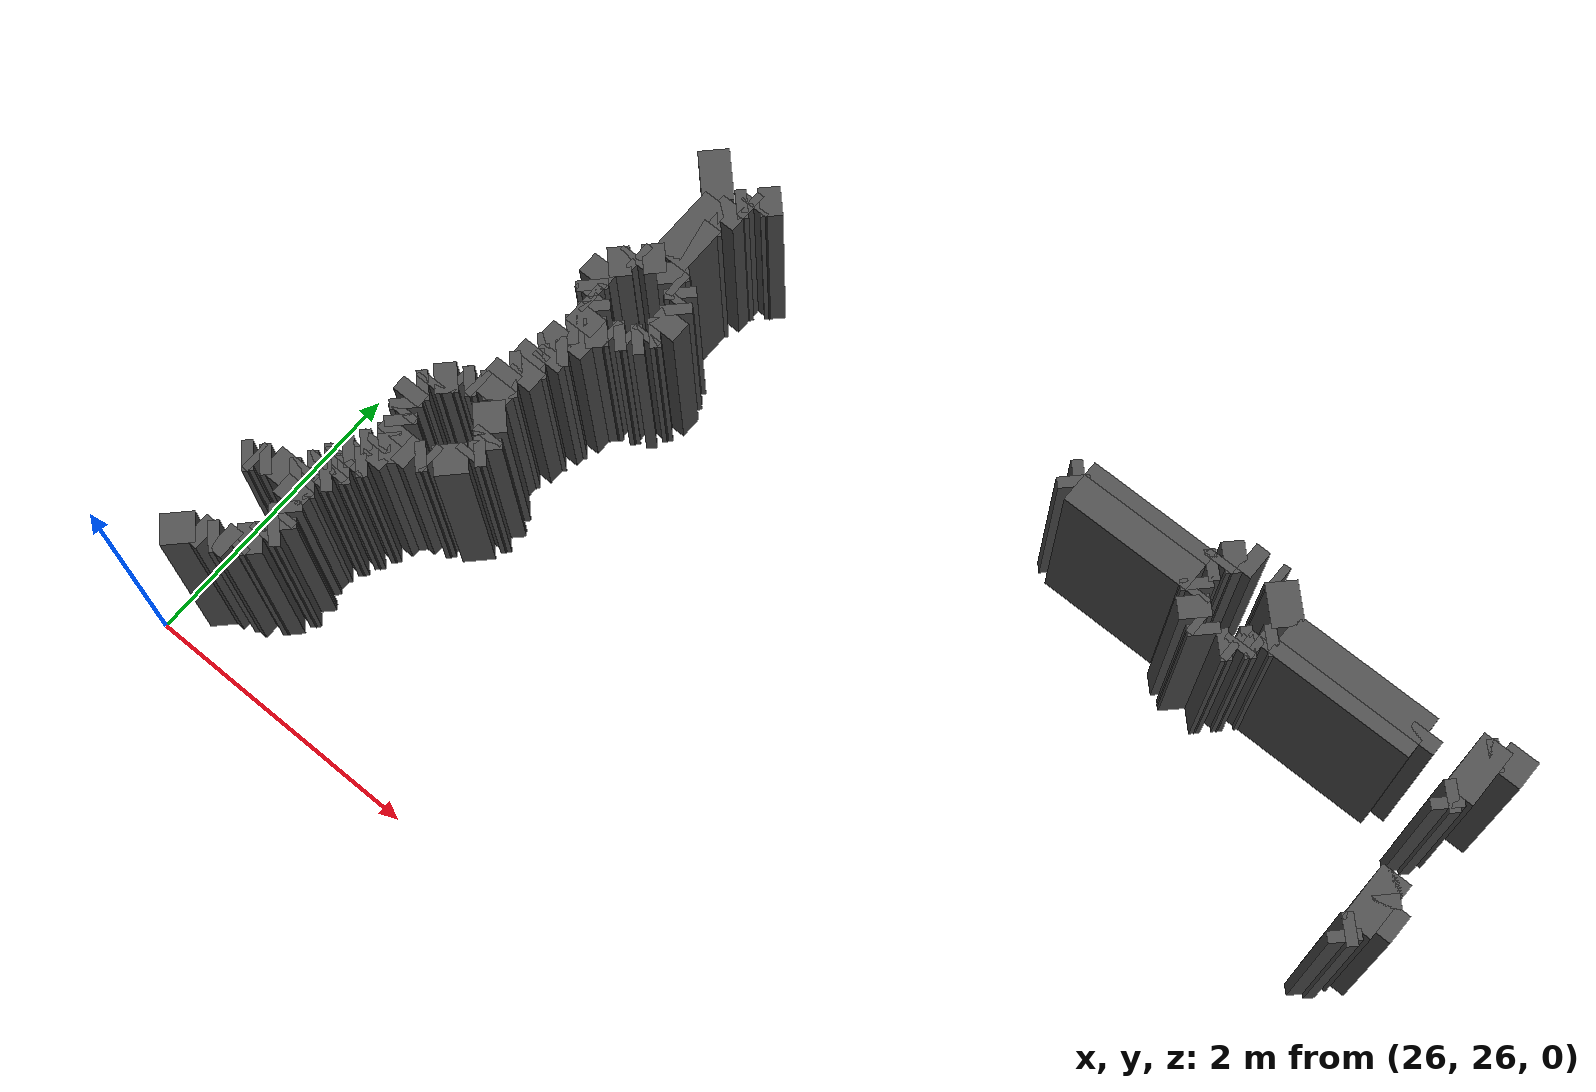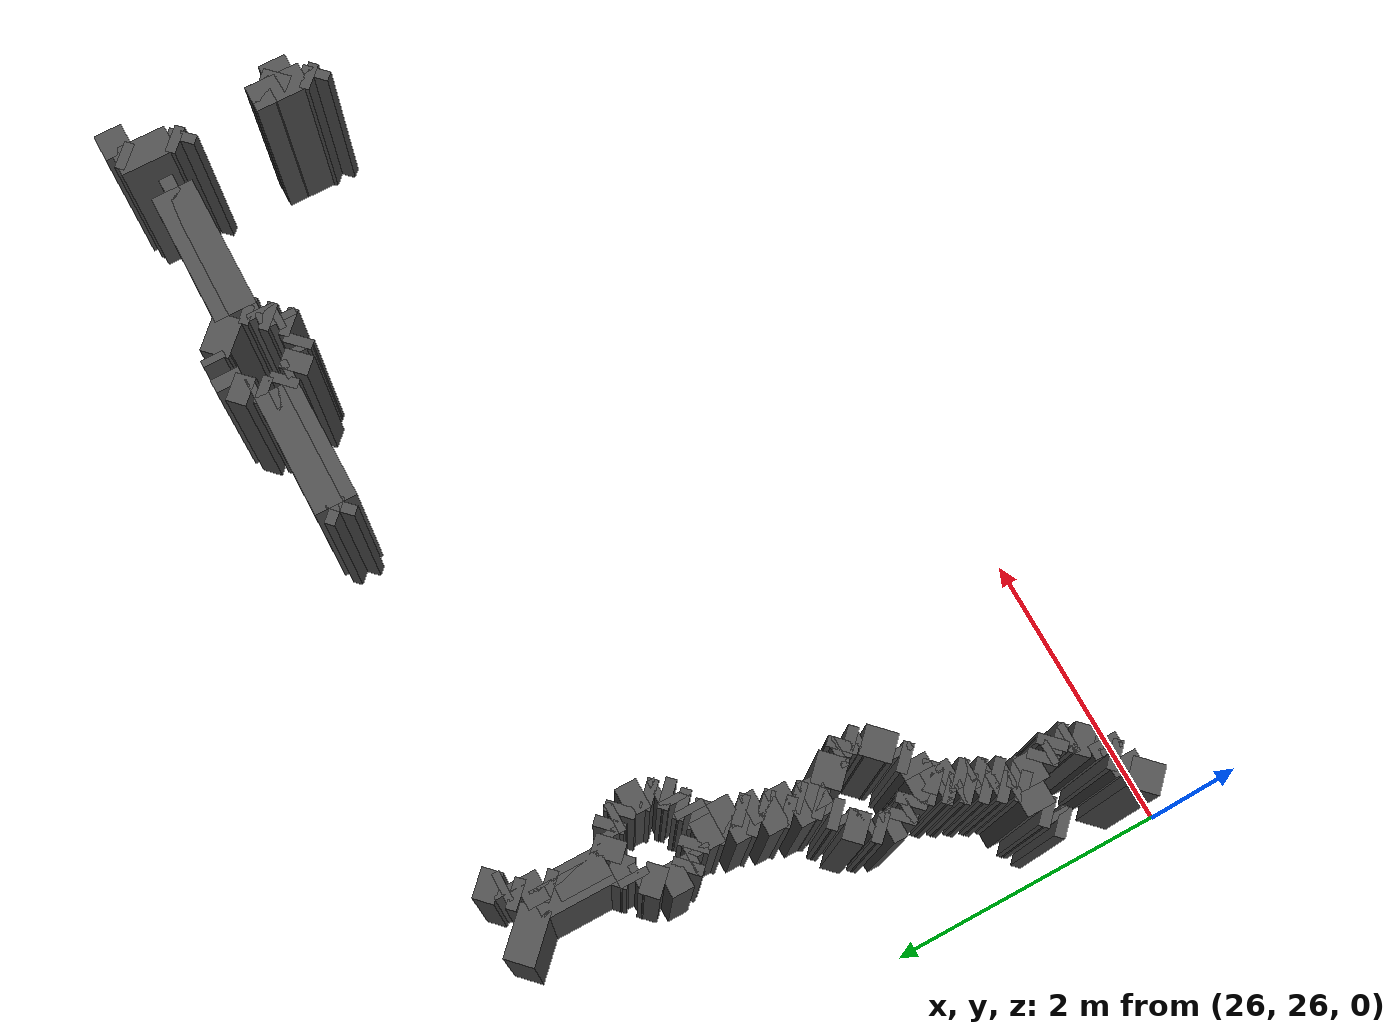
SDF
<sdf version="1.9">
 <model name="generated_walls">
  <static>true</static>
  <link name="wall_55_0">
   <pose>32.975 29.725 0.75 0 0 2.356</pose>
   <collision name="collision"><geometry><box><size>0.071 0.2 1.5</size></box></geometry></collision>
   <visual name="visual">
    <geometry><box><size>0.071 0.2 1.5</size></box></geometry>
    <material><ambient>0.3 0.3 0.3 1</ambient></material>
   </visual>
  </link>
  <link name="wall_55_1">
   <pose>32.975 29.775 0.75 0 0 0.785</pose>
   <collision name="collision"><geometry><box><size>0.071 0.2 1.5</size></box></geometry></collision>
   <visual name="visual">
    <geometry><box><size>0.071 0.2 1.5</size></box></geometry>
    <material><ambient>0.3 0.3 0.3 1</ambient></material>
   </visual>
  </link>
  <link name="wall_55_2">
   <pose>33.000 30.000 0.75 0 0 1.571</pose>
   <collision name="collision"><geometry><box><size>0.400 0.2 1.5</size></box></geometry></collision>
   <visual name="visual">
    <geometry><box><size>0.400 0.2 1.5</size></box></geometry>
    <material><ambient>0.3 0.3 0.3 1</ambient></material>
   </visual>
  </link>
  <link name="wall_55_5">
   <pose>33.150 30.150 0.75 0 0 3.142</pose>
   <collision name="collision"><geometry><box><size>0.200 0.2 1.5</size></box></geometry></collision>
   <visual name="visual">
    <geometry><box><size>0.200 0.2 1.5</size></box></geometry>
    <material><ambient>0.3 0.3 0.3 1</ambient></material>
   </visual>
  </link>
  <link name="wall_55_6">
   <pose>33.025 30.125 0.75 0 0 -2.356</pose>
   <collision name="collision"><geometry><box><size>0.071 0.2 1.5</size></box></geometry></collision>
   <visual name="visual">
    <geometry><box><size>0.071 0.2 1.5</size></box></geometry>
    <material><ambient>0.3 0.3 0.3 1</ambient></material>
   </visual>
  </link>
  <link name="wall_56_0">
   <pose>31.275 29.675 0.75 0 0 2.356</pose>
   <collision name="collision"><geometry><box><size>0.071 0.2 1.5</size></box></geometry></collision>
   <visual name="visual">
    <geometry><box><size>0.071 0.2 1.5</size></box></geometry>
    <material><ambient>0.3 0.3 0.3 1</ambient></material>
   </visual>
  </link>
  <link name="wall_56_1">
   <pose>31.225 29.700 0.75 0 0 3.142</pose>
   <collision name="collision"><geometry><box><size>0.050 0.2 1.5</size></box></geometry></collision>
   <visual name="visual">
    <geometry><box><size>0.050 0.2 1.5</size></box></geometry>
    <material><ambient>0.3 0.3 0.3 1</ambient></material>
   </visual>
  </link>
  <link name="wall_56_2">
   <pose>31.150 29.750 0.75 0 0 2.356</pose>
   <collision name="collision"><geometry><box><size>0.141 0.2 1.5</size></box></geometry></collision>
   <visual name="visual">
    <geometry><box><size>0.141 0.2 1.5</size></box></geometry>
    <material><ambient>0.3 0.3 0.3 1</ambient></material>
   </visual>
  </link>
  <link name="wall_56_3">
   <pose>31.100 29.825 0.75 0 0 1.571</pose>
   <collision name="collision"><geometry><box><size>0.050 0.2 1.5</size></box></geometry></collision>
   <visual name="visual">
    <geometry><box><size>0.050 0.2 1.5</size></box></geometry>
    <material><ambient>0.3 0.3 0.3 1</ambient></material>
   </visual>
  </link>
  <link name="wall_56_4">
   <pose>31.075 29.875 0.75 0 0 2.356</pose>
   <collision name="collision"><geometry><box><size>0.071 0.2 1.5</size></box></geometry></collision>
   <visual name="visual">
    <geometry><box><size>0.071 0.2 1.5</size></box></geometry>
    <material><ambient>0.3 0.3 0.3 1</ambient></material>
   </visual>
  </link>
  <link name="wall_56_5">
   <pose>30.600 29.900 0.75 0 0 3.142</pose>
   <collision name="collision"><geometry><box><size>0.900 0.2 1.5</size></box></geometry></collision>
   <visual name="visual">
    <geometry><box><size>0.900 0.2 1.5</size></box></geometry>
    <material><ambient>0.3 0.3 0.3 1</ambient></material>
   </visual>
  </link>
  <link name="wall_56_6">
   <pose>30.125 29.925 0.75 0 0 2.356</pose>
   <collision name="collision"><geometry><box><size>0.071 0.2 1.5</size></box></geometry></collision>
   <visual name="visual">
    <geometry><box><size>0.071 0.2 1.5</size></box></geometry>
    <material><ambient>0.3 0.3 0.3 1</ambient></material>
   </visual>
  </link>
  <link name="wall_56_7">
   <pose>30.125 29.975 0.75 0 0 0.785</pose>
   <collision name="collision"><geometry><box><size>0.071 0.2 1.5</size></box></geometry></collision>
   <visual name="visual">
    <geometry><box><size>0.071 0.2 1.5</size></box></geometry>
    <material><ambient>0.3 0.3 0.3 1</ambient></material>
   </visual>
  </link>
  <link name="wall_56_8">
   <pose>30.600 30.000 0.75 0 0 0.000</pose>
   <collision name="collision"><geometry><box><size>0.900 0.2 1.5</size></box></geometry></collision>
   <visual name="visual">
    <geometry><box><size>0.900 0.2 1.5</size></box></geometry>
    <material><ambient>0.3 0.3 0.3 1</ambient></material>
   </visual>
  </link>
  <link name="wall_56_9">
   <pose>31.075 30.025 0.75 0 0 0.785</pose>
   <collision name="collision"><geometry><box><size>0.071 0.2 1.5</size></box></geometry></collision>
   <visual name="visual">
    <geometry><box><size>0.071 0.2 1.5</size></box></geometry>
    <material><ambient>0.3 0.3 0.3 1</ambient></material>
   </visual>
  </link>
  <link name="wall_56_10">
   <pose>31.100 30.075 0.75 0 0 1.571</pose>
   <collision name="collision"><geometry><box><size>0.050 0.2 1.5</size></box></geometry></collision>
   <visual name="visual">
    <geometry><box><size>0.050 0.2 1.5</size></box></geometry>
    <material><ambient>0.3 0.3 0.3 1</ambient></material>
   </visual>
  </link>
  <link name="wall_56_11">
   <pose>31.150 30.150 0.75 0 0 0.785</pose>
   <collision name="collision"><geometry><box><size>0.141 0.2 1.5</size></box></geometry></collision>
   <visual name="visual">
    <geometry><box><size>0.141 0.2 1.5</size></box></geometry>
    <material><ambient>0.3 0.3 0.3 1</ambient></material>
   </visual>
  </link>
  <link name="wall_56_12">
   <pose>31.250 30.200 0.75 0 0 0.000</pose>
   <collision name="collision"><geometry><box><size>0.100 0.2 1.5</size></box></geometry></collision>
   <visual name="visual">
    <geometry><box><size>0.100 0.2 1.5</size></box></geometry>
    <material><ambient>0.3 0.3 0.3 1</ambient></material>
   </visual>
  </link>
  <link name="wall_56_15">
   <pose>31.425 30.200 0.75 0 0 0.000</pose>
   <collision name="collision"><geometry><box><size>0.050 0.2 1.5</size></box></geometry></collision>
   <visual name="visual">
    <geometry><box><size>0.050 0.2 1.5</size></box></geometry>
    <material><ambient>0.3 0.3 0.3 1</ambient></material>
   </visual>
  </link>
  <link name="wall_56_16">
   <pose>31.550 30.100 0.75 0 0 -0.785</pose>
   <collision name="collision"><geometry><box><size>0.283 0.2 1.5</size></box></geometry></collision>
   <visual name="visual">
    <geometry><box><size>0.283 0.2 1.5</size></box></geometry>
    <material><ambient>0.3 0.3 0.3 1</ambient></material>
   </visual>
  </link>
  <link name="wall_56_17">
   <pose>32.150 30.000 0.75 0 0 0.000</pose>
   <collision name="collision"><geometry><box><size>1.000 0.2 1.5</size></box></geometry></collision>
   <visual name="visual">
    <geometry><box><size>1.000 0.2 1.5</size></box></geometry>
    <material><ambient>0.3 0.3 0.3 1</ambient></material>
   </visual>
  </link>
  <link name="wall_56_18">
   <pose>32.650 29.950 0.75 0 0 -1.571</pose>
   <collision name="collision"><geometry><box><size>0.100 0.2 1.5</size></box></geometry></collision>
   <visual name="visual">
    <geometry><box><size>0.100 0.2 1.5</size></box></geometry>
    <material><ambient>0.3 0.3 0.3 1</ambient></material>
   </visual>
  </link>
  <link name="wall_56_19">
   <pose>32.150 29.900 0.75 0 0 3.142</pose>
   <collision name="collision"><geometry><box><size>1.000 0.2 1.5</size></box></geometry></collision>
   <visual name="visual">
    <geometry><box><size>1.000 0.2 1.5</size></box></geometry>
    <material><ambient>0.3 0.3 0.3 1</ambient></material>
   </visual>
  </link>
  <link name="wall_56_20">
   <pose>31.625 29.875 0.75 0 0 -2.356</pose>
   <collision name="collision"><geometry><box><size>0.071 0.2 1.5</size></box></geometry></collision>
   <visual name="visual">
    <geometry><box><size>0.071 0.2 1.5</size></box></geometry>
    <material><ambient>0.3 0.3 0.3 1</ambient></material>
   </visual>
  </link>
  <link name="wall_56_21">
   <pose>31.600 29.825 0.75 0 0 -1.571</pose>
   <collision name="collision"><geometry><box><size>0.050 0.2 1.5</size></box></geometry></collision>
   <visual name="visual">
    <geometry><box><size>0.050 0.2 1.5</size></box></geometry>
    <material><ambient>0.3 0.3 0.3 1</ambient></material>
   </visual>
  </link>
  <link name="wall_56_22">
   <pose>31.575 29.800 0.75 0 0 3.142</pose>
   <collision name="collision"><geometry><box><size>0.050 0.2 1.5</size></box></geometry></collision>
   <visual name="visual">
    <geometry><box><size>0.050 0.2 1.5</size></box></geometry>
    <material><ambient>0.3 0.3 0.3 1</ambient></material>
   </visual>
  </link>
  <link name="wall_56_23">
   <pose>31.525 29.775 0.75 0 0 -2.356</pose>
   <collision name="collision"><geometry><box><size>0.071 0.2 1.5</size></box></geometry></collision>
   <visual name="visual">
    <geometry><box><size>0.071 0.2 1.5</size></box></geometry>
    <material><ambient>0.3 0.3 0.3 1</ambient></material>
   </visual>
  </link>
  <link name="wall_56_24">
   <pose>31.500 29.725 0.75 0 0 -1.571</pose>
   <collision name="collision"><geometry><box><size>0.050 0.2 1.5</size></box></geometry></collision>
   <visual name="visual">
    <geometry><box><size>0.050 0.2 1.5</size></box></geometry>
    <material><ambient>0.3 0.3 0.3 1</ambient></material>
   </visual>
  </link>
  <link name="wall_56_25">
   <pose>31.475 29.700 0.75 0 0 3.142</pose>
   <collision name="collision"><geometry><box><size>0.050 0.2 1.5</size></box></geometry></collision>
   <visual name="visual">
    <geometry><box><size>0.050 0.2 1.5</size></box></geometry>
    <material><ambient>0.3 0.3 0.3 1</ambient></material>
   </visual>
  </link>
  <link name="wall_56_26">
   <pose>31.425 29.675 0.75 0 0 -2.356</pose>
   <collision name="collision"><geometry><box><size>0.071 0.2 1.5</size></box></geometry></collision>
   <visual name="visual">
    <geometry><box><size>0.071 0.2 1.5</size></box></geometry>
    <material><ambient>0.3 0.3 0.3 1</ambient></material>
   </visual>
  </link>
  <link name="wall_69_0">
   <pose>32.975 28.725 0.75 0 0 2.356</pose>
   <collision name="collision"><geometry><box><size>0.071 0.2 1.5</size></box></geometry></collision>
   <visual name="visual">
    <geometry><box><size>0.071 0.2 1.5</size></box></geometry>
    <material><ambient>0.3 0.3 0.3 1</ambient></material>
   </visual>
  </link>
  <link name="wall_69_1">
   <pose>32.975 28.775 0.75 0 0 0.785</pose>
   <collision name="collision"><geometry><box><size>0.071 0.2 1.5</size></box></geometry></collision>
   <visual name="visual">
    <geometry><box><size>0.071 0.2 1.5</size></box></geometry>
    <material><ambient>0.3 0.3 0.3 1</ambient></material>
   </visual>
  </link>
  <link name="wall_69_2">
   <pose>33.000 29.000 0.75 0 0 1.571</pose>
   <collision name="collision"><geometry><box><size>0.400 0.2 1.5</size></box></geometry></collision>
   <visual name="visual">
    <geometry><box><size>0.400 0.2 1.5</size></box></geometry>
    <material><ambient>0.3 0.3 0.3 1</ambient></material>
   </visual>
  </link>
  <link name="wall_69_3">
   <pose>33.000 29.125 0.75 0 0 -1.571</pose>
   <collision name="collision"><geometry><box><size>0.150 0.2 1.5</size></box></geometry></collision>
   <visual name="visual">
    <geometry><box><size>0.150 0.2 1.5</size></box></geometry>
    <material><ambient>0.3 0.3 0.3 1</ambient></material>
   </visual>
  </link>
  <link name="wall_69_4">
   <pose>33.050 29.000 0.75 0 0 -0.785</pose>
   <collision name="collision"><geometry><box><size>0.141 0.2 1.5</size></box></geometry></collision>
   <visual name="visual">
    <geometry><box><size>0.141 0.2 1.5</size></box></geometry>
    <material><ambient>0.3 0.3 0.3 1</ambient></material>
   </visual>
  </link>
  <link name="wall_69_5">
   <pose>33.150 28.950 0.75 0 0 0.000</pose>
   <collision name="collision"><geometry><box><size>0.100 0.2 1.5</size></box></geometry></collision>
   <visual name="visual">
    <geometry><box><size>0.100 0.2 1.5</size></box></geometry>
    <material><ambient>0.3 0.3 0.3 1</ambient></material>
   </visual>
  </link>
  <link name="wall_161_2009">
   <pose>26.225 26.925 0.75 0 0 0.785</pose>
   <collision name="collision"><geometry><box><size>0.071 0.2 1.5</size></box></geometry></collision>
   <visual name="visual">
    <geometry><box><size>0.071 0.2 1.5</size></box></geometry>
    <material><ambient>0.3 0.3 0.3 1</ambient></material>
   </visual>
  </link>
  <link name="wall_161_2010">
   <pose>26.275 26.950 0.75 0 0 0.000</pose>
   <collision name="collision"><geometry><box><size>0.050 0.2 1.5</size></box></geometry></collision>
   <visual name="visual">
    <geometry><box><size>0.050 0.2 1.5</size></box></geometry>
    <material><ambient>0.3 0.3 0.3 1</ambient></material>
   </visual>
  </link>
  <link name="wall_161_2011">
   <pose>26.325 26.975 0.75 0 0 0.785</pose>
   <collision name="collision"><geometry><box><size>0.071 0.2 1.5</size></box></geometry></collision>
   <visual name="visual">
    <geometry><box><size>0.071 0.2 1.5</size></box></geometry>
    <material><ambient>0.3 0.3 0.3 1</ambient></material>
   </visual>
  </link>
  <link name="wall_161_2012">
   <pose>26.425 27.000 0.75 0 0 0.000</pose>
   <collision name="collision"><geometry><box><size>0.150 0.2 1.5</size></box></geometry></collision>
   <visual name="visual">
    <geometry><box><size>0.150 0.2 1.5</size></box></geometry>
    <material><ambient>0.3 0.3 0.3 1</ambient></material>
   </visual>
  </link>
  <link name="wall_161_2013">
   <pose>26.525 27.025 0.75 0 0 0.785</pose>
   <collision name="collision"><geometry><box><size>0.071 0.2 1.5</size></box></geometry></collision>
   <visual name="visual">
    <geometry><box><size>0.071 0.2 1.5</size></box></geometry>
    <material><ambient>0.3 0.3 0.3 1</ambient></material>
   </visual>
  </link>
  <link name="wall_161_2014">
   <pose>26.550 27.075 0.75 0 0 1.571</pose>
   <collision name="collision"><geometry><box><size>0.050 0.2 1.5</size></box></geometry></collision>
   <visual name="visual">
    <geometry><box><size>0.050 0.2 1.5</size></box></geometry>
    <material><ambient>0.3 0.3 0.3 1</ambient></material>
   </visual>
  </link>
  <link name="wall_161_2015">
   <pose>26.575 27.125 0.75 0 0 0.785</pose>
   <collision name="collision"><geometry><box><size>0.071 0.2 1.5</size></box></geometry></collision>
   <visual name="visual">
    <geometry><box><size>0.071 0.2 1.5</size></box></geometry>
    <material><ambient>0.3 0.3 0.3 1</ambient></material>
   </visual>
  </link>
  <link name="wall_161_2016">
   <pose>26.600 27.175 0.75 0 0 1.571</pose>
   <collision name="collision"><geometry><box><size>0.050 0.2 1.5</size></box></geometry></collision>
   <visual name="visual">
    <geometry><box><size>0.050 0.2 1.5</size></box></geometry>
    <material><ambient>0.3 0.3 0.3 1</ambient></material>
   </visual>
  </link>
  <link name="wall_161_2017">
   <pose>26.625 27.225 0.75 0 0 0.785</pose>
   <collision name="collision"><geometry><box><size>0.071 0.2 1.5</size></box></geometry></collision>
   <visual name="visual">
    <geometry><box><size>0.071 0.2 1.5</size></box></geometry>
    <material><ambient>0.3 0.3 0.3 1</ambient></material>
   </visual>
  </link>
  <link name="wall_161_2018">
   <pose>26.650 27.275 0.75 0 0 1.571</pose>
   <collision name="collision"><geometry><box><size>0.050 0.2 1.5</size></box></geometry></collision>
   <visual name="visual">
    <geometry><box><size>0.050 0.2 1.5</size></box></geometry>
    <material><ambient>0.3 0.3 0.3 1</ambient></material>
   </visual>
  </link>
  <link name="wall_161_2019">
   <pose>26.675 27.325 0.75 0 0 0.785</pose>
   <collision name="collision"><geometry><box><size>0.071 0.2 1.5</size></box></geometry></collision>
   <visual name="visual">
    <geometry><box><size>0.071 0.2 1.5</size></box></geometry>
    <material><ambient>0.3 0.3 0.3 1</ambient></material>
   </visual>
  </link>
  <link name="wall_161_2020">
   <pose>26.700 27.375 0.75 0 0 1.571</pose>
   <collision name="collision"><geometry><box><size>0.050 0.2 1.5</size></box></geometry></collision>
   <visual name="visual">
    <geometry><box><size>0.050 0.2 1.5</size></box></geometry>
    <material><ambient>0.3 0.3 0.3 1</ambient></material>
   </visual>
  </link>
  <link name="wall_161_2021">
   <pose>26.725 27.425 0.75 0 0 0.785</pose>
   <collision name="collision"><geometry><box><size>0.071 0.2 1.5</size></box></geometry></collision>
   <visual name="visual">
    <geometry><box><size>0.071 0.2 1.5</size></box></geometry>
    <material><ambient>0.3 0.3 0.3 1</ambient></material>
   </visual>
  </link>
  <link name="wall_161_2022">
   <pose>26.750 27.475 0.75 0 0 1.571</pose>
   <collision name="collision"><geometry><box><size>0.050 0.2 1.5</size></box></geometry></collision>
   <visual name="visual">
    <geometry><box><size>0.050 0.2 1.5</size></box></geometry>
    <material><ambient>0.3 0.3 0.3 1</ambient></material>
   </visual>
  </link>
  <link name="wall_161_2023">
   <pose>26.775 27.525 0.75 0 0 0.785</pose>
   <collision name="collision"><geometry><box><size>0.071 0.2 1.5</size></box></geometry></collision>
   <visual name="visual">
    <geometry><box><size>0.071 0.2 1.5</size></box></geometry>
    <material><ambient>0.3 0.3 0.3 1</ambient></material>
   </visual>
  </link>
  <link name="wall_161_2024">
   <pose>26.800 27.600 0.75 0 0 1.571</pose>
   <collision name="collision"><geometry><box><size>0.100 0.2 1.5</size></box></geometry></collision>
   <visual name="visual">
    <geometry><box><size>0.100 0.2 1.5</size></box></geometry>
    <material><ambient>0.3 0.3 0.3 1</ambient></material>
   </visual>
  </link>
  <link name="wall_161_2025">
   <pose>26.775 27.675 0.75 0 0 2.356</pose>
   <collision name="collision"><geometry><box><size>0.071 0.2 1.5</size></box></geometry></collision>
   <visual name="visual">
    <geometry><box><size>0.071 0.2 1.5</size></box></geometry>
    <material><ambient>0.3 0.3 0.3 1</ambient></material>
   </visual>
  </link>
  <link name="wall_161_2026">
   <pose>26.750 27.725 0.75 0 0 1.571</pose>
   <collision name="collision"><geometry><box><size>0.050 0.2 1.5</size></box></geometry></collision>
   <visual name="visual">
    <geometry><box><size>0.050 0.2 1.5</size></box></geometry>
    <material><ambient>0.3 0.3 0.3 1</ambient></material>
   </visual>
  </link>
  <link name="wall_161_2027">
   <pose>26.725 27.775 0.75 0 0 2.356</pose>
   <collision name="collision"><geometry><box><size>0.071 0.2 1.5</size></box></geometry></collision>
   <visual name="visual">
    <geometry><box><size>0.071 0.2 1.5</size></box></geometry>
    <material><ambient>0.3 0.3 0.3 1</ambient></material>
   </visual>
  </link>
  <link name="wall_161_2028">
   <pose>26.700 27.850 0.75 0 0 1.571</pose>
   <collision name="collision"><geometry><box><size>0.100 0.2 1.5</size></box></geometry></collision>
   <visual name="visual">
    <geometry><box><size>0.100 0.2 1.5</size></box></geometry>
    <material><ambient>0.3 0.3 0.3 1</ambient></material>
   </visual>
  </link>
  <link name="wall_161_2029">
   <pose>26.725 27.925 0.75 0 0 0.785</pose>
   <collision name="collision"><geometry><box><size>0.071 0.2 1.5</size></box></geometry></collision>
   <visual name="visual">
    <geometry><box><size>0.071 0.2 1.5</size></box></geometry>
    <material><ambient>0.3 0.3 0.3 1</ambient></material>
   </visual>
  </link>
  <link name="wall_161_2030">
   <pose>26.750 27.975 0.75 0 0 1.571</pose>
   <collision name="collision"><geometry><box><size>0.050 0.2 1.5</size></box></geometry></collision>
   <visual name="visual">
    <geometry><box><size>0.050 0.2 1.5</size></box></geometry>
    <material><ambient>0.3 0.3 0.3 1</ambient></material>
   </visual>
  </link>
  <link name="wall_161_2031">
   <pose>26.800 28.050 0.75 0 0 0.785</pose>
   <collision name="collision"><geometry><box><size>0.141 0.2 1.5</size></box></geometry></collision>
   <visual name="visual">
    <geometry><box><size>0.141 0.2 1.5</size></box></geometry>
    <material><ambient>0.3 0.3 0.3 1</ambient></material>
   </visual>
  </link>
  <link name="wall_161_2032">
   <pose>26.875 28.100 0.75 0 0 0.000</pose>
   <collision name="collision"><geometry><box><size>0.050 0.2 1.5</size></box></geometry></collision>
   <visual name="visual">
    <geometry><box><size>0.050 0.2 1.5</size></box></geometry>
    <material><ambient>0.3 0.3 0.3 1</ambient></material>
   </visual>
  </link>
  <link name="wall_161_2033">
   <pose>26.925 28.125 0.75 0 0 0.785</pose>
   <collision name="collision"><geometry><box><size>0.071 0.2 1.5</size></box></geometry></collision>
   <visual name="visual">
    <geometry><box><size>0.071 0.2 1.5</size></box></geometry>
    <material><ambient>0.3 0.3 0.3 1</ambient></material>
   </visual>
  </link>
  <link name="wall_161_2034">
   <pose>26.975 28.150 0.75 0 0 0.000</pose>
   <collision name="collision"><geometry><box><size>0.050 0.2 1.5</size></box></geometry></collision>
   <visual name="visual">
    <geometry><box><size>0.050 0.2 1.5</size></box></geometry>
    <material><ambient>0.3 0.3 0.3 1</ambient></material>
   </visual>
  </link>
  <link name="wall_161_2035">
   <pose>27.025 28.175 0.75 0 0 0.785</pose>
   <collision name="collision"><geometry><box><size>0.071 0.2 1.5</size></box></geometry></collision>
   <visual name="visual">
    <geometry><box><size>0.071 0.2 1.5</size></box></geometry>
    <material><ambient>0.3 0.3 0.3 1</ambient></material>
   </visual>
  </link>
  <link name="wall_161_2036">
   <pose>27.050 28.275 0.75 0 0 1.571</pose>
   <collision name="collision"><geometry><box><size>0.150 0.2 1.5</size></box></geometry></collision>
   <visual name="visual">
    <geometry><box><size>0.150 0.2 1.5</size></box></geometry>
    <material><ambient>0.3 0.3 0.3 1</ambient></material>
   </visual>
  </link>
  <link name="wall_161_2037">
   <pose>27.075 28.375 0.75 0 0 0.785</pose>
   <collision name="collision"><geometry><box><size>0.071 0.2 1.5</size></box></geometry></collision>
   <visual name="visual">
    <geometry><box><size>0.071 0.2 1.5</size></box></geometry>
    <material><ambient>0.3 0.3 0.3 1</ambient></material>
   </visual>
  </link>
  <link name="wall_161_2038">
   <pose>27.100 28.475 0.75 0 0 1.571</pose>
   <collision name="collision"><geometry><box><size>0.150 0.2 1.5</size></box></geometry></collision>
   <visual name="visual">
    <geometry><box><size>0.150 0.2 1.5</size></box></geometry>
    <material><ambient>0.3 0.3 0.3 1</ambient></material>
   </visual>
  </link>
  <link name="wall_161_2039">
   <pose>27.125 28.575 0.75 0 0 0.785</pose>
   <collision name="collision"><geometry><box><size>0.071 0.2 1.5</size></box></geometry></collision>
   <visual name="visual">
    <geometry><box><size>0.071 0.2 1.5</size></box></geometry>
    <material><ambient>0.3 0.3 0.3 1</ambient></material>
   </visual>
  </link>
  <link name="wall_161_2040">
   <pose>27.150 28.675 0.75 0 0 1.571</pose>
   <collision name="collision"><geometry><box><size>0.150 0.2 1.5</size></box></geometry></collision>
   <visual name="visual">
    <geometry><box><size>0.150 0.2 1.5</size></box></geometry>
    <material><ambient>0.3 0.3 0.3 1</ambient></material>
   </visual>
  </link>
  <link name="wall_161_2041">
   <pose>27.175 28.775 0.75 0 0 0.785</pose>
   <collision name="collision"><geometry><box><size>0.071 0.2 1.5</size></box></geometry></collision>
   <visual name="visual">
    <geometry><box><size>0.071 0.2 1.5</size></box></geometry>
    <material><ambient>0.3 0.3 0.3 1</ambient></material>
   </visual>
  </link>
  <link name="wall_161_2042">
   <pose>27.200 28.875 0.75 0 0 1.571</pose>
   <collision name="collision"><geometry><box><size>0.150 0.2 1.5</size></box></geometry></collision>
   <visual name="visual">
    <geometry><box><size>0.150 0.2 1.5</size></box></geometry>
    <material><ambient>0.3 0.3 0.3 1</ambient></material>
   </visual>
  </link>
  <link name="wall_161_2043">
   <pose>27.175 28.975 0.75 0 0 2.356</pose>
   <collision name="collision"><geometry><box><size>0.071 0.2 1.5</size></box></geometry></collision>
   <visual name="visual">
    <geometry><box><size>0.071 0.2 1.5</size></box></geometry>
    <material><ambient>0.3 0.3 0.3 1</ambient></material>
   </visual>
  </link>
  <link name="wall_161_2044">
   <pose>27.125 29.000 0.75 0 0 3.142</pose>
   <collision name="collision"><geometry><box><size>0.050 0.2 1.5</size></box></geometry></collision>
   <visual name="visual">
    <geometry><box><size>0.050 0.2 1.5</size></box></geometry>
    <material><ambient>0.3 0.3 0.3 1</ambient></material>
   </visual>
  </link>
  <link name="wall_161_2045">
   <pose>27.100 29.025 0.75 0 0 1.571</pose>
   <collision name="collision"><geometry><box><size>0.050 0.2 1.5</size></box></geometry></collision>
   <visual name="visual">
    <geometry><box><size>0.050 0.2 1.5</size></box></geometry>
    <material><ambient>0.3 0.3 0.3 1</ambient></material>
   </visual>
  </link>
  <link name="wall_161_2046">
   <pose>27.075 29.075 0.75 0 0 2.356</pose>
   <collision name="collision"><geometry><box><size>0.071 0.2 1.5</size></box></geometry></collision>
   <visual name="visual">
    <geometry><box><size>0.071 0.2 1.5</size></box></geometry>
    <material><ambient>0.3 0.3 0.3 1</ambient></material>
   </visual>
  </link>
  <link name="wall_161_2047">
   <pose>27.050 29.175 0.75 0 0 1.571</pose>
   <collision name="collision"><geometry><box><size>0.150 0.2 1.5</size></box></geometry></collision>
   <visual name="visual">
    <geometry><box><size>0.150 0.2 1.5</size></box></geometry>
    <material><ambient>0.3 0.3 0.3 1</ambient></material>
   </visual>
  </link>
  <link name="wall_161_2048">
   <pose>27.100 29.300 0.75 0 0 0.785</pose>
   <collision name="collision"><geometry><box><size>0.141 0.2 1.5</size></box></geometry></collision>
   <visual name="visual">
    <geometry><box><size>0.141 0.2 1.5</size></box></geometry>
    <material><ambient>0.3 0.3 0.3 1</ambient></material>
   </visual>
  </link>
  <link name="wall_161_2049">
   <pose>27.150 29.375 0.75 0 0 1.571</pose>
   <collision name="collision"><geometry><box><size>0.050 0.2 1.5</size></box></geometry></collision>
   <visual name="visual">
    <geometry><box><size>0.050 0.2 1.5</size></box></geometry>
    <material><ambient>0.3 0.3 0.3 1</ambient></material>
   </visual>
  </link>
  <link name="wall_161_2050">
   <pose>27.175 29.400 0.75 0 0 0.000</pose>
   <collision name="collision"><geometry><box><size>0.050 0.2 1.5</size></box></geometry></collision>
   <visual name="visual">
    <geometry><box><size>0.050 0.2 1.5</size></box></geometry>
    <material><ambient>0.3 0.3 0.3 1</ambient></material>
   </visual>
  </link>
  <link name="wall_161_2051">
   <pose>27.250 29.450 0.75 0 0 0.785</pose>
   <collision name="collision"><geometry><box><size>0.141 0.2 1.5</size></box></geometry></collision>
   <visual name="visual">
    <geometry><box><size>0.141 0.2 1.5</size></box></geometry>
    <material><ambient>0.3 0.3 0.3 1</ambient></material>
   </visual>
  </link>
  <link name="wall_161_2052">
   <pose>27.300 29.750 0.75 0 0 1.571</pose>
   <collision name="collision"><geometry><box><size>0.500 0.2 1.5</size></box></geometry></collision>
   <visual name="visual">
    <geometry><box><size>0.500 0.2 1.5</size></box></geometry>
    <material><ambient>0.3 0.3 0.3 1</ambient></material>
   </visual>
  </link>
  <link name="wall_161_2053">
   <pose>27.175 30.125 0.75 0 0 2.356</pose>
   <collision name="collision"><geometry><box><size>0.354 0.2 1.5</size></box></geometry></collision>
   <visual name="visual">
    <geometry><box><size>0.354 0.2 1.5</size></box></geometry>
    <material><ambient>0.3 0.3 0.3 1</ambient></material>
   </visual>
  </link>
  <link name="wall_161_2135">
   <pose>27.550 30.200 0.75 0 0 -2.356</pose>
   <collision name="collision"><geometry><box><size>0.141 0.2 1.5</size></box></geometry></collision>
   <visual name="visual">
    <geometry><box><size>0.141 0.2 1.5</size></box></geometry>
    <material><ambient>0.3 0.3 0.3 1</ambient></material>
   </visual>
  </link>
  <link name="wall_161_2136">
   <pose>27.500 30.125 0.75 0 0 -1.571</pose>
   <collision name="collision"><geometry><box><size>0.050 0.2 1.5</size></box></geometry></collision>
   <visual name="visual">
    <geometry><box><size>0.050 0.2 1.5</size></box></geometry>
    <material><ambient>0.3 0.3 0.3 1</ambient></material>
   </visual>
  </link>
  <link name="wall_161_2137">
   <pose>27.475 30.100 0.75 0 0 3.142</pose>
   <collision name="collision"><geometry><box><size>0.050 0.2 1.5</size></box></geometry></collision>
   <visual name="visual">
    <geometry><box><size>0.050 0.2 1.5</size></box></geometry>
    <material><ambient>0.3 0.3 0.3 1</ambient></material>
   </visual>
  </link>
  <link name="wall_161_2138">
   <pose>27.425 30.075 0.75 0 0 -2.356</pose>
   <collision name="collision"><geometry><box><size>0.071 0.2 1.5</size></box></geometry></collision>
   <visual name="visual">
    <geometry><box><size>0.071 0.2 1.5</size></box></geometry>
    <material><ambient>0.3 0.3 0.3 1</ambient></material>
   </visual>
  </link>
  <link name="wall_161_2139">
   <pose>27.400 29.975 0.75 0 0 -1.571</pose>
   <collision name="collision"><geometry><box><size>0.150 0.2 1.5</size></box></geometry></collision>
   <visual name="visual">
    <geometry><box><size>0.150 0.2 1.5</size></box></geometry>
    <material><ambient>0.3 0.3 0.3 1</ambient></material>
   </visual>
  </link>
  <link name="wall_161_2140">
   <pose>27.375 29.875 0.75 0 0 -2.356</pose>
   <collision name="collision"><geometry><box><size>0.071 0.2 1.5</size></box></geometry></collision>
   <visual name="visual">
    <geometry><box><size>0.071 0.2 1.5</size></box></geometry>
    <material><ambient>0.3 0.3 0.3 1</ambient></material>
   </visual>
  </link>
  <link name="wall_161_2141">
   <pose>27.350 29.675 0.75 0 0 -1.571</pose>
   <collision name="collision"><geometry><box><size>0.350 0.2 1.5</size></box></geometry></collision>
   <visual name="visual">
    <geometry><box><size>0.350 0.2 1.5</size></box></geometry>
    <material><ambient>0.3 0.3 0.3 1</ambient></material>
   </visual>
  </link>
  <link name="wall_161_2142">
   <pose>27.400 29.450 0.75 0 0 -0.785</pose>
   <collision name="collision"><geometry><box><size>0.141 0.2 1.5</size></box></geometry></collision>
   <visual name="visual">
    <geometry><box><size>0.141 0.2 1.5</size></box></geometry>
    <material><ambient>0.3 0.3 0.3 1</ambient></material>
   </visual>
  </link>
  <link name="wall_161_2143">
   <pose>27.475 29.400 0.75 0 0 0.000</pose>
   <collision name="collision"><geometry><box><size>0.050 0.2 1.5</size></box></geometry></collision>
   <visual name="visual">
    <geometry><box><size>0.050 0.2 1.5</size></box></geometry>
    <material><ambient>0.3 0.3 0.3 1</ambient></material>
   </visual>
  </link>
  <link name="wall_161_2144">
   <pose>27.525 29.375 0.75 0 0 -0.785</pose>
   <collision name="collision"><geometry><box><size>0.071 0.2 1.5</size></box></geometry></collision>
   <visual name="visual">
    <geometry><box><size>0.071 0.2 1.5</size></box></geometry>
    <material><ambient>0.3 0.3 0.3 1</ambient></material>
   </visual>
  </link>
  <link name="wall_161_2145">
   <pose>27.550 29.325 0.75 0 0 -1.571</pose>
   <collision name="collision"><geometry><box><size>0.050 0.2 1.5</size></box></geometry></collision>
   <visual name="visual">
    <geometry><box><size>0.050 0.2 1.5</size></box></geometry>
    <material><ambient>0.3 0.3 0.3 1</ambient></material>
   </visual>
  </link>
  <link name="wall_161_2146">
   <pose>27.575 29.275 0.75 0 0 -0.785</pose>
   <collision name="collision"><geometry><box><size>0.071 0.2 1.5</size></box></geometry></collision>
   <visual name="visual">
    <geometry><box><size>0.071 0.2 1.5</size></box></geometry>
    <material><ambient>0.3 0.3 0.3 1</ambient></material>
   </visual>
  </link>
  <link name="wall_161_2147">
   <pose>27.600 29.175 0.75 0 0 -1.571</pose>
   <collision name="collision"><geometry><box><size>0.150 0.2 1.5</size></box></geometry></collision>
   <visual name="visual">
    <geometry><box><size>0.150 0.2 1.5</size></box></geometry>
    <material><ambient>0.3 0.3 0.3 1</ambient></material>
   </visual>
  </link>
  <link name="wall_161_2148">
   <pose>27.575 29.075 0.75 0 0 -2.356</pose>
   <collision name="collision"><geometry><box><size>0.071 0.2 1.5</size></box></geometry></collision>
   <visual name="visual">
    <geometry><box><size>0.071 0.2 1.5</size></box></geometry>
    <material><ambient>0.3 0.3 0.3 1</ambient></material>
   </visual>
  </link>
  <link name="wall_161_2149">
   <pose>27.550 29.025 0.75 0 0 -1.571</pose>
   <collision name="collision"><geometry><box><size>0.050 0.2 1.5</size></box></geometry></collision>
   <visual name="visual">
    <geometry><box><size>0.050 0.2 1.5</size></box></geometry>
    <material><ambient>0.3 0.3 0.3 1</ambient></material>
   </visual>
  </link>
  <link name="wall_161_2150">
   <pose>27.525 28.975 0.75 0 0 -2.356</pose>
   <collision name="collision"><geometry><box><size>0.071 0.2 1.5</size></box></geometry></collision>
   <visual name="visual">
    <geometry><box><size>0.071 0.2 1.5</size></box></geometry>
    <material><ambient>0.3 0.3 0.3 1</ambient></material>
   </visual>
  </link>
  <link name="wall_161_2151">
   <pose>27.475 28.950 0.75 0 0 3.142</pose>
   <collision name="collision"><geometry><box><size>0.050 0.2 1.5</size></box></geometry></collision>
   <visual name="visual">
    <geometry><box><size>0.050 0.2 1.5</size></box></geometry>
    <material><ambient>0.3 0.3 0.3 1</ambient></material>
   </visual>
  </link>
  <link name="wall_161_2152">
   <pose>27.425 28.925 0.75 0 0 -2.356</pose>
   <collision name="collision"><geometry><box><size>0.071 0.2 1.5</size></box></geometry></collision>
   <visual name="visual">
    <geometry><box><size>0.071 0.2 1.5</size></box></geometry>
    <material><ambient>0.3 0.3 0.3 1</ambient></material>
   </visual>
  </link>
  <link name="wall_161_2153">
   <pose>27.375 28.900 0.75 0 0 3.142</pose>
   <collision name="collision"><geometry><box><size>0.050 0.2 1.5</size></box></geometry></collision>
   <visual name="visual">
    <geometry><box><size>0.050 0.2 1.5</size></box></geometry>
    <material><ambient>0.3 0.3 0.3 1</ambient></material>
   </visual>
  </link>
  <link name="wall_161_2154">
   <pose>27.300 28.850 0.75 0 0 -2.356</pose>
   <collision name="collision"><geometry><box><size>0.141 0.2 1.5</size></box></geometry></collision>
   <visual name="visual">
    <geometry><box><size>0.141 0.2 1.5</size></box></geometry>
    <material><ambient>0.3 0.3 0.3 1</ambient></material>
   </visual>
  </link>
  <link name="wall_161_2155">
   <pose>27.250 28.725 0.75 0 0 -1.571</pose>
   <collision name="collision"><geometry><box><size>0.150 0.2 1.5</size></box></geometry></collision>
   <visual name="visual">
    <geometry><box><size>0.150 0.2 1.5</size></box></geometry>
    <material><ambient>0.3 0.3 0.3 1</ambient></material>
   </visual>
  </link>
  <link name="wall_161_2156">
   <pose>27.225 28.625 0.75 0 0 -2.356</pose>
   <collision name="collision"><geometry><box><size>0.071 0.2 1.5</size></box></geometry></collision>
   <visual name="visual">
    <geometry><box><size>0.071 0.2 1.5</size></box></geometry>
    <material><ambient>0.3 0.3 0.3 1</ambient></material>
   </visual>
  </link>
  <link name="wall_161_2157">
   <pose>27.200 28.550 0.75 0 0 -1.571</pose>
   <collision name="collision"><geometry><box><size>0.100 0.2 1.5</size></box></geometry></collision>
   <visual name="visual">
    <geometry><box><size>0.100 0.2 1.5</size></box></geometry>
    <material><ambient>0.3 0.3 0.3 1</ambient></material>
   </visual>
  </link>
  <link name="wall_161_2158">
   <pose>27.175 28.475 0.75 0 0 -2.356</pose>
   <collision name="collision"><geometry><box><size>0.071 0.2 1.5</size></box></geometry></collision>
   <visual name="visual">
    <geometry><box><size>0.071 0.2 1.5</size></box></geometry>
    <material><ambient>0.3 0.3 0.3 1</ambient></material>
   </visual>
  </link>
  <link name="wall_161_2159">
   <pose>27.150 28.375 0.75 0 0 -1.571</pose>
   <collision name="collision"><geometry><box><size>0.150 0.2 1.5</size></box></geometry></collision>
   <visual name="visual">
    <geometry><box><size>0.150 0.2 1.5</size></box></geometry>
    <material><ambient>0.3 0.3 0.3 1</ambient></material>
   </visual>
  </link>
  <link name="wall_161_2160">
   <pose>27.125 28.275 0.75 0 0 -2.356</pose>
   <collision name="collision"><geometry><box><size>0.071 0.2 1.5</size></box></geometry></collision>
   <visual name="visual">
    <geometry><box><size>0.071 0.2 1.5</size></box></geometry>
    <material><ambient>0.3 0.3 0.3 1</ambient></material>
   </visual>
  </link>
  <link name="wall_161_2161">
   <pose>27.100 28.175 0.75 0 0 -1.571</pose>
   <collision name="collision"><geometry><box><size>0.150 0.2 1.5</size></box></geometry></collision>
   <visual name="visual">
    <geometry><box><size>0.150 0.2 1.5</size></box></geometry>
    <material><ambient>0.3 0.3 0.3 1</ambient></material>
   </visual>
  </link>
  <link name="wall_161_2162">
   <pose>27.175 28.025 0.75 0 0 -0.785</pose>
   <collision name="collision"><geometry><box><size>0.212 0.2 1.5</size></box></geometry></collision>
   <visual name="visual">
    <geometry><box><size>0.212 0.2 1.5</size></box></geometry>
    <material><ambient>0.3 0.3 0.3 1</ambient></material>
   </visual>
  </link>
  <link name="wall_161_2163">
   <pose>27.250 27.925 0.75 0 0 -1.571</pose>
   <collision name="collision"><geometry><box><size>0.050 0.2 1.5</size></box></geometry></collision>
   <visual name="visual">
    <geometry><box><size>0.050 0.2 1.5</size></box></geometry>
    <material><ambient>0.3 0.3 0.3 1</ambient></material>
   </visual>
  </link>
  <link name="wall_161_2164">
   <pose>27.275 27.875 0.75 0 0 -0.785</pose>
   <collision name="collision"><geometry><box><size>0.071 0.2 1.5</size></box></geometry></collision>
   <visual name="visual">
    <geometry><box><size>0.071 0.2 1.5</size></box></geometry>
    <material><ambient>0.3 0.3 0.3 1</ambient></material>
   </visual>
  </link>
  <link name="wall_161_2165">
   <pose>27.275 27.825 0.75 0 0 -2.356</pose>
   <collision name="collision"><geometry><box><size>0.071 0.2 1.5</size></box></geometry></collision>
   <visual name="visual">
    <geometry><box><size>0.071 0.2 1.5</size></box></geometry>
    <material><ambient>0.3 0.3 0.3 1</ambient></material>
   </visual>
  </link>
  <link name="wall_161_2166">
   <pose>27.250 27.775 0.75 0 0 -1.571</pose>
   <collision name="collision"><geometry><box><size>0.050 0.2 1.5</size></box></geometry></collision>
   <visual name="visual">
    <geometry><box><size>0.050 0.2 1.5</size></box></geometry>
    <material><ambient>0.3 0.3 0.3 1</ambient></material>
   </visual>
  </link>
  <link name="wall_161_2167">
   <pose>27.175 27.675 0.75 0 0 -2.356</pose>
   <collision name="collision"><geometry><box><size>0.212 0.2 1.5</size></box></geometry></collision>
   <visual name="visual">
    <geometry><box><size>0.212 0.2 1.5</size></box></geometry>
    <material><ambient>0.3 0.3 0.3 1</ambient></material>
   </visual>
  </link>
  <link name="wall_161_2168">
   <pose>27.075 27.600 0.75 0 0 3.142</pose>
   <collision name="collision"><geometry><box><size>0.050 0.2 1.5</size></box></geometry></collision>
   <visual name="visual">
    <geometry><box><size>0.050 0.2 1.5</size></box></geometry>
    <material><ambient>0.3 0.3 0.3 1</ambient></material>
   </visual>
  </link>
  <link name="wall_161_2169">
   <pose>27.025 27.575 0.75 0 0 -2.356</pose>
   <collision name="collision"><geometry><box><size>0.071 0.2 1.5</size></box></geometry></collision>
   <visual name="visual">
    <geometry><box><size>0.071 0.2 1.5</size></box></geometry>
    <material><ambient>0.3 0.3 0.3 1</ambient></material>
   </visual>
  </link>
  <link name="wall_161_2170">
   <pose>26.950 27.550 0.75 0 0 3.142</pose>
   <collision name="collision"><geometry><box><size>0.100 0.2 1.5</size></box></geometry></collision>
   <visual name="visual">
    <geometry><box><size>0.100 0.2 1.5</size></box></geometry>
    <material><ambient>0.3 0.3 0.3 1</ambient></material>
   </visual>
  </link>
  <link name="wall_161_2171">
   <pose>26.850 27.500 0.75 0 0 -2.356</pose>
   <collision name="collision"><geometry><box><size>0.141 0.2 1.5</size></box></geometry></collision>
   <visual name="visual">
    <geometry><box><size>0.141 0.2 1.5</size></box></geometry>
    <material><ambient>0.3 0.3 0.3 1</ambient></material>
   </visual>
  </link>
  <link name="wall_161_2172">
   <pose>26.800 27.400 0.75 0 0 -1.571</pose>
   <collision name="collision"><geometry><box><size>0.100 0.2 1.5</size></box></geometry></collision>
   <visual name="visual">
    <geometry><box><size>0.100 0.2 1.5</size></box></geometry>
    <material><ambient>0.3 0.3 0.3 1</ambient></material>
   </visual>
  </link>
  <link name="wall_161_2173">
   <pose>26.775 27.325 0.75 0 0 -2.356</pose>
   <collision name="collision"><geometry><box><size>0.071 0.2 1.5</size></box></geometry></collision>
   <visual name="visual">
    <geometry><box><size>0.071 0.2 1.5</size></box></geometry>
    <material><ambient>0.3 0.3 0.3 1</ambient></material>
   </visual>
  </link>
  <link name="wall_161_2174">
   <pose>26.750 27.275 0.75 0 0 -1.571</pose>
   <collision name="collision"><geometry><box><size>0.050 0.2 1.5</size></box></geometry></collision>
   <visual name="visual">
    <geometry><box><size>0.050 0.2 1.5</size></box></geometry>
    <material><ambient>0.3 0.3 0.3 1</ambient></material>
   </visual>
  </link>
  <link name="wall_161_2175">
   <pose>26.725 27.225 0.75 0 0 -2.356</pose>
   <collision name="collision"><geometry><box><size>0.071 0.2 1.5</size></box></geometry></collision>
   <visual name="visual">
    <geometry><box><size>0.071 0.2 1.5</size></box></geometry>
    <material><ambient>0.3 0.3 0.3 1</ambient></material>
   </visual>
  </link>
  <link name="wall_161_2176">
   <pose>26.700 27.175 0.75 0 0 -1.571</pose>
   <collision name="collision"><geometry><box><size>0.050 0.2 1.5</size></box></geometry></collision>
   <visual name="visual">
    <geometry><box><size>0.050 0.2 1.5</size></box></geometry>
    <material><ambient>0.3 0.3 0.3 1</ambient></material>
   </visual>
  </link>
  <link name="wall_161_2177">
   <pose>26.675 27.125 0.75 0 0 -2.356</pose>
   <collision name="collision"><geometry><box><size>0.071 0.2 1.5</size></box></geometry></collision>
   <visual name="visual">
    <geometry><box><size>0.071 0.2 1.5</size></box></geometry>
    <material><ambient>0.3 0.3 0.3 1</ambient></material>
   </visual>
  </link>
  <link name="wall_161_2178">
   <pose>26.650 27.075 0.75 0 0 -1.571</pose>
   <collision name="collision"><geometry><box><size>0.050 0.2 1.5</size></box></geometry></collision>
   <visual name="visual">
    <geometry><box><size>0.050 0.2 1.5</size></box></geometry>
    <material><ambient>0.3 0.3 0.3 1</ambient></material>
   </visual>
  </link>
  <link name="wall_161_2179">
   <pose>26.625 27.025 0.75 0 0 -2.356</pose>
   <collision name="collision"><geometry><box><size>0.071 0.2 1.5</size></box></geometry></collision>
   <visual name="visual">
    <geometry><box><size>0.071 0.2 1.5</size></box></geometry>
    <material><ambient>0.3 0.3 0.3 1</ambient></material>
   </visual>
  </link>
  <link name="wall_161_2180">
   <pose>26.600 26.925 0.75 0 0 -1.571</pose>
   <collision name="collision"><geometry><box><size>0.150 0.2 1.5</size></box></geometry></collision>
   <visual name="visual">
    <geometry><box><size>0.150 0.2 1.5</size></box></geometry>
    <material><ambient>0.3 0.3 0.3 1</ambient></material>
   </visual>
  </link>
  <link name="wall_161_2181">
   <pose>26.625 26.825 0.75 0 0 -0.785</pose>
   <collision name="collision"><geometry><box><size>0.071 0.2 1.5</size></box></geometry></collision>
   <visual name="visual">
    <geometry><box><size>0.071 0.2 1.5</size></box></geometry>
    <material><ambient>0.3 0.3 0.3 1</ambient></material>
   </visual>
  </link>
  <link name="wall_161_2182">
   <pose>26.650 26.775 0.75 0 0 -1.571</pose>
   <collision name="collision"><geometry><box><size>0.050 0.2 1.5</size></box></geometry></collision>
   <visual name="visual">
    <geometry><box><size>0.050 0.2 1.5</size></box></geometry>
    <material><ambient>0.3 0.3 0.3 1</ambient></material>
   </visual>
  </link>
  <link name="wall_161_2183">
   <pose>26.675 26.725 0.75 0 0 -0.785</pose>
   <collision name="collision"><geometry><box><size>0.071 0.2 1.5</size></box></geometry></collision>
   <visual name="visual">
    <geometry><box><size>0.071 0.2 1.5</size></box></geometry>
    <material><ambient>0.3 0.3 0.3 1</ambient></material>
   </visual>
  </link>
  <link name="wall_161_2184">
   <pose>26.675 26.675 0.75 0 0 -2.356</pose>
   <collision name="collision"><geometry><box><size>0.071 0.2 1.5</size></box></geometry></collision>
   <visual name="visual">
    <geometry><box><size>0.071 0.2 1.5</size></box></geometry>
    <material><ambient>0.3 0.3 0.3 1</ambient></material>
   </visual>
  </link>
  <link name="wall_161_2185">
   <pose>26.650 26.625 0.75 0 0 -1.571</pose>
   <collision name="collision"><geometry><box><size>0.050 0.2 1.5</size></box></geometry></collision>
   <visual name="visual">
    <geometry><box><size>0.050 0.2 1.5</size></box></geometry>
    <material><ambient>0.3 0.3 0.3 1</ambient></material>
   </visual>
  </link>
  <link name="wall_161_2186">
   <pose>26.600 26.550 0.75 0 0 -2.356</pose>
   <collision name="collision"><geometry><box><size>0.141 0.2 1.5</size></box></geometry></collision>
   <visual name="visual">
    <geometry><box><size>0.141 0.2 1.5</size></box></geometry>
    <material><ambient>0.3 0.3 0.3 1</ambient></material>
   </visual>
  </link>
  <link name="wall_161_2187">
   <pose>26.550 26.475 0.75 0 0 -1.571</pose>
   <collision name="collision"><geometry><box><size>0.050 0.2 1.5</size></box></geometry></collision>
   <visual name="visual">
    <geometry><box><size>0.050 0.2 1.5</size></box></geometry>
    <material><ambient>0.3 0.3 0.3 1</ambient></material>
   </visual>
  </link>
  <link name="wall_161_2188">
   <pose>26.500 26.450 0.75 0 0 3.142</pose>
   <collision name="collision"><geometry><box><size>0.100 0.2 1.5</size></box></geometry></collision>
   <visual name="visual">
    <geometry><box><size>0.100 0.2 1.5</size></box></geometry>
    <material><ambient>0.3 0.3 0.3 1</ambient></material>
   </visual>
  </link>
  <link name="wall_161_2189">
   <pose>26.425 26.425 0.75 0 0 -2.356</pose>
   <collision name="collision"><geometry><box><size>0.071 0.2 1.5</size></box></geometry></collision>
   <visual name="visual">
    <geometry><box><size>0.071 0.2 1.5</size></box></geometry>
    <material><ambient>0.3 0.3 0.3 1</ambient></material>
   </visual>
  </link>
  <link name="wall_161_2190">
   <pose>26.350 26.400 0.75 0 0 3.142</pose>
   <collision name="collision"><geometry><box><size>0.100 0.2 1.5</size></box></geometry></collision>
   <visual name="visual">
    <geometry><box><size>0.100 0.2 1.5</size></box></geometry>
    <material><ambient>0.3 0.3 0.3 1</ambient></material>
   </visual>
  </link>
  <link name="wall_161_2191">
   <pose>26.225 26.325 0.75 0 0 -2.356</pose>
   <collision name="collision"><geometry><box><size>0.212 0.2 1.5</size></box></geometry></collision>
   <visual name="visual">
    <geometry><box><size>0.212 0.2 1.5</size></box></geometry>
    <material><ambient>0.3 0.3 0.3 1</ambient></material>
   </visual>
  </link>
 </model>
</sdf>
